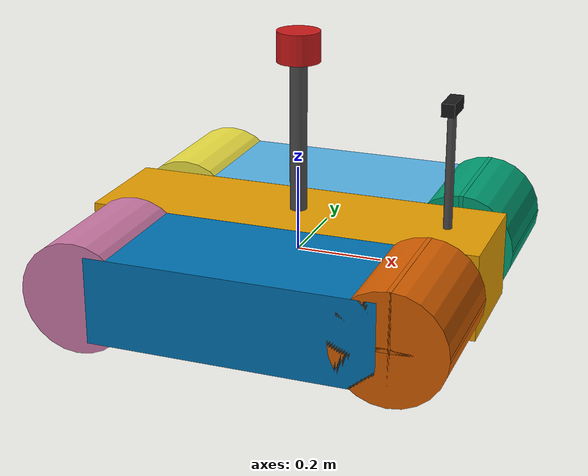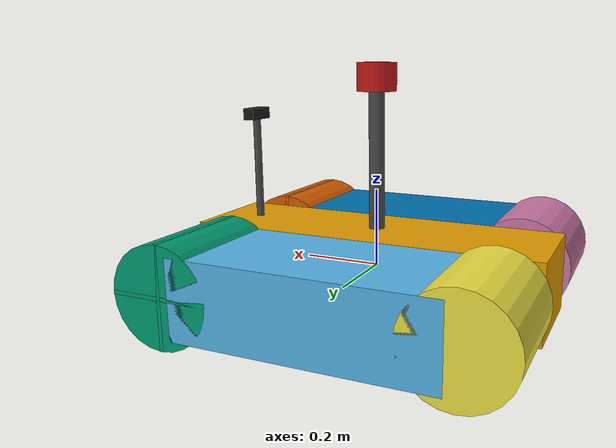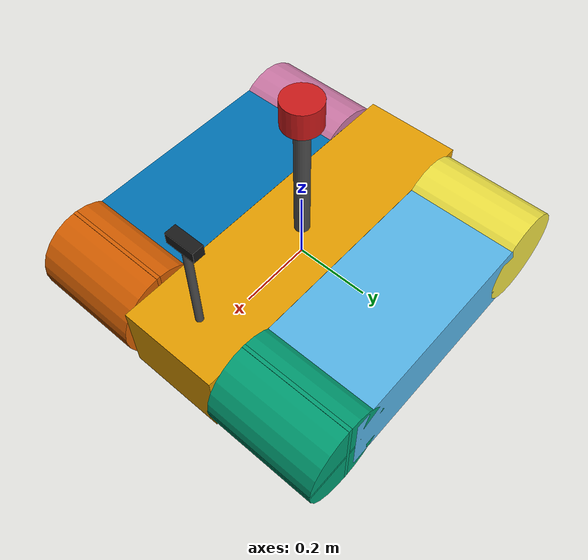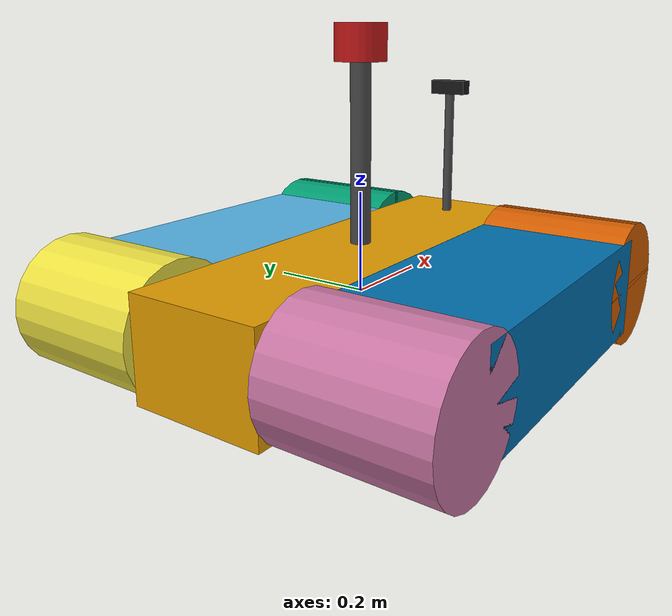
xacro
<robot name="two_track_robot" xmlns:xacro="http://www.ros.org/wiki/xacro">

    <xacro:property name="mass_scale" value="0.958120"/>

    <!-- URDF file for general ROS systems such as ros_control, rviz, etc.           -->
    <!-- We define here;                                                             -->
    <!--     * a body to be wrapped by the track                                     -->
    <!--     * a sprocket to drive the track                                         -->
    <!--     * an axle and actuator for the sprocket                                 -->
    <!--     * an idler wheel on the other side of the sprocket                      -->
    <!-- Other entities specialized for Gazebo are defined in *_gazebo.urdf.xacro .  -->

    <xacro:macro name="make_box_inertia" params="mass size_x size_y size_z">
        <inertial>
            <mass value="${mass}" />
            <inertia ixx="${mass * (size_y * size_y + size_z * size_z) / 12}" ixy="0" ixz="0" iyy="${mass * (size_z * size_z + size_x * size_x) / 12}" iyz="0" izz="${mass * (size_x * size_x + size_y * size_y) / 12}" />
        </inertial>
    </xacro:macro>

    <xacro:macro name="make_wheel_inertia" params="mass radius length">
        <inertial>
            <mass value="${mass}" />
            <!-- assuming axis of cylinder is y, not z -->
            <inertia ixx="${mass * (radius * radius / 4 + length * length / 12)}" ixy="0" ixz="0" iyy="${mass * radius * radius / 2}" iyz="0" izz="${mass * (radius * radius / 4 + length * length / 12)}" />
        </inertial>
    </xacro:macro>

    <!-- ================= MAIN BODY (ROOT LINK) ================= -->

    <link name="body">
        <visual name="lidar_mast">
            <origin xyz="0.0000 0 0.26965" rpy="0 0 0" />
            <geometry><cylinder radius="0.020" length="0.35930" /></geometry>
            <material name="dark_grey"><color rgba="0.3 0.3 0.3 1" /></material>
        </visual>
        <visual name="camera_mast">
            <origin xyz="0.3543 0 0.22885" rpy="0 0 0" />
            <geometry><cylinder radius="0.010" length="0.27770" /></geometry>
            <material name="dark_grey"><color rgba="0.3 0.3 0.3 1" /></material>
        </visual>
        <xacro:make_box_inertia mass="${33.116425*mass_scale}" size_x="0.918" size_y="0.270" size_z="0.20" />

        <visual>
            <geometry>
                <box size="0.918 0.270 0.20" />
            </geometry>
        </visual>

        <collision>
            <geometry>
                <box size="0.918 0.270 0.20" />
            </geometry>
        </collision>
    </link>

    <!-- ================= LEFT TRACK ================= -->

    <!-- body to be wrapped by the track -->

    <link name="left_body">
        <xacro:make_box_inertia mass="${3.0*mass_scale}" size_x="0.65" size_y="0.30" size_z="0.2" />

        <visual>
            <geometry>
                <box size="0.65 0.30 0.2" />
            </geometry>
        </visual>

        <collision>
            <geometry>
                <box size="0.66 0.3 0.2" />
            </geometry>
        </collision>
    </link>

    <joint name="left_body_joint" type="fixed">
        <origin xyz="0 0.28545 0" rpy="0 0 0" />
        <parent link="body" />
        <child link="left_body" />
    </joint>

    <!-- sprocket driving the track -->

    <link name="left_sprocket">
        <xacro:make_wheel_inertia mass="${1.0*mass_scale}" radius="0.128" length="0.30" />

        <visual>
            <origin xyz="0 0 0" rpy="${pi / 2} 0 0" />
            <geometry>
                <cylinder radius="0.128" length="0.30" />
            </geometry>
        </visual>
        <visual>
            <geometry>
                <box size="0.01 0.30 0.256" />
            </geometry>
        </visual>
        <visual>
            <geometry>
                <box size="0.256 0.30 0.01" />
            </geometry>
        </visual>

        <collision>
            <origin xyz="0 0 0" rpy="${pi / 2} 0 0" />
            <geometry>
                <cylinder radius="0.128" length="0.30" />
            </geometry>
        </collision>
    </link>

    <joint name="left_sprocket_axle" type="continuous">
        <origin xyz="0.35 0 0" rpy="0 0 0" />
        <parent link="left_body" />
        <child link="left_sprocket" />
        <axis xyz="0 1 0" />
        <limit effort="55.946" velocity="5.0" />
    </joint>

    <transmission name="left_sprocket_transmission">
        <type>transmission_interface/SimpleTransmission</type>
        <joint name="left_sprocket_axle">
            <hardwareInterface>hardware_interface/VelocityJointInterface</hardwareInterface>
        </joint>
        <actuator name="left_sprocket_actuator">
            <mechanicalReduction>1</mechanicalReduction>
        </actuator>
    </transmission>

    <!-- idler on the other side of the sprocket -->

    <link name="left_idler">
        <xacro:make_wheel_inertia mass="${1.0*mass_scale}" radius="0.128" length="0.30" />

        <visual>
            <origin xyz="0 0 0" rpy="${pi / 2} 0 0" />
            <geometry>
                <cylinder radius="0.128" length="0.30" />
            </geometry>
        </visual>

        <collision>
            <origin xyz="0 0 0" rpy="${pi / 2} 0 0" />
            <geometry>
                <cylinder radius="0.128" length="0.30" />
            </geometry>
        </collision>
    </link>

    <joint name="left_idler_axle" type="fixed">
        <origin xyz="-0.35 0 0" rpy="0 0 0" />
        <parent link="left_body" />
        <child link="left_idler" />
    </joint>

    <!-- ================= RIGHT TRACK ================= -->

    <!-- body to be wrapped by the track -->

    <link name="right_body">
        <xacro:make_box_inertia mass="${3.0*mass_scale}" size_x="0.65" size_y="0.30" size_z="0.2" />

        <visual>
            <geometry>
                <box size="0.65 0.30 0.2" />
            </geometry>
        </visual>

        <collision>
            <geometry>
                <box size="0.66 0.3 0.2" />
            </geometry>
        </collision>
    </link>

    <joint name="right_body_joint" type="fixed">
        <origin xyz="0 -0.28545 0" rpy="0 0 0" />
        <parent link="body" />
        <child link="right_body" />
    </joint>

    <!-- sprocket driving the track -->

    <link name="right_sprocket">
        <xacro:make_wheel_inertia mass="${1.0*mass_scale}" radius="0.128" length="0.30" />

        <visual>
            <origin xyz="0 0 0" rpy="${pi / 2} 0 0" />
            <geometry>
                <cylinder radius="0.128" length="0.30" />
            </geometry>
        </visual>
        <visual>
            <geometry>
                <box size="0.01 0.30 0.256" />
            </geometry>
        </visual>
        <visual>
            <geometry>
                <box size="0.256 0.30 0.01" />
            </geometry>
        </visual>

        <collision>
            <origin xyz="0 0 0" rpy="${pi / 2} 0 0" />
            <geometry>
                <cylinder radius="0.128" length="0.30" />
            </geometry>
        </collision>
    </link>

    <joint name="right_sprocket_axle" type="continuous">
        <origin xyz="0.35 0 0" rpy="0 0 0" />
        <parent link="right_body" />
        <child link="right_sprocket" />
        <axis xyz="0 1 0" />
        <limit effort="55.946" velocity="5.0" />
    </joint>

    <transmission name="right_sprocket_transmission">
        <type>transmission_interface/SimpleTransmission</type>
        <joint name="right_sprocket_axle">
            <hardwareInterface>hardware_interface/VelocityJointInterface</hardwareInterface>
        </joint>
        <actuator name="right_sprocket_actuator">
            <mechanicalReduction>1</mechanicalReduction>
        </actuator>
    </transmission>

    <!-- idler on the other side of the sprocket -->

    <link name="right_idler">
        <xacro:make_wheel_inertia mass="${1.0*mass_scale}" radius="0.128" length="0.30" />

        <visual>
            <origin xyz="0 0 0" rpy="${pi / 2} 0 0" />
            <geometry>
                <cylinder radius="0.128" length="0.30" />
            </geometry>
        </visual>

        <collision>
            <origin xyz="0 0 0" rpy="${pi / 2} 0 0" />
            <geometry>
                <cylinder radius="0.128" length="0.30" />
            </geometry>
        </collision>
    </link>

    <joint name="right_idler_axle" type="fixed">
        <origin xyz="-0.35 0 0" rpy="0 0 0" />
        <parent link="right_body" />
        <child link="right_idler" />
    </joint>

    <!-- ================= VELODYNE LIDAR ================= -->

    <link name="velodyne_base_link">
        <xacro:make_box_inertia mass="${0.824740*mass_scale}" size_x="0.1" size_y="0.1" size_z="0.07" />

        <visual>
            <origin xyz="0 0 0" rpy="0 0 0" />
            <geometry>
                <cylinder radius="0.05" length="0.07"/>
            </geometry>
            <material name="velodyne_red">
                <color rgba="0.8 0.1 0.1 1.0"/>
            </material>
        </visual>

        <collision>
            <origin xyz="0 0 0" rpy="0 0 0" />
            <geometry>
                <cylinder radius="0.05" length="0.07"/>
            </geometry>
        </collision>
    </link>

    <joint name="velodyne_base_mount_joint" type="fixed">
        <origin xyz="0 0 0.4843" rpy="0 0 0" />
        <parent link="body" />
        <child link="velodyne_base_link" />
    </joint>

    <!-- ================= IMU ================= -->

    <link name="imu_link">
        <inertial>
            <mass value="${0.0149050*mass_scale}"/>
            <origin xyz="0 0 0" rpy="0 0 0"/>
            <inertia ixx="6.049218e-06" ixy="0" ixz="0" iyy="1.491588e-06" iyz="0" izz="6.049218e-06"/>
        </inertial>

        <visual>
            <origin xyz="0 0 0" rpy="0 0 0"/>
            <geometry>
                <box size="0.05 0.05 0.02"/>
            </geometry>
            <material name="imu_grey">
                <color rgba="0.3 0.3 0.3 1.0"/>
            </material>
        </visual>

        <collision>
            <origin xyz="0 0 0" rpy="0 0 0"/>
            <geometry>
                <box size="0.05 0.05 0.02"/>
            </geometry>
        </collision>
    </link>

    <joint name="imu_joint" type="fixed">
        <origin xyz="0.015658 0.000000 0.008978" rpy="0 0 0"/>
        <parent link="body"/>
        <child link="imu_link"/>
    </joint>

    <!-- ================= CAMERA ================= -->

    <link name="camera_link">
        <inertial>
            <mass value="${0.0099366*mass_scale}"/>
            <origin xyz="0 0 0" rpy="0 0 0"/>
            <inertia ixx="9.94392e-05" ixy="0" ixz="0" iyy="9.94392e-05" iyz="0" izz="9.94392e-05"/>
        </inertial>

        <visual>
            <origin xyz="0 0 0" rpy="0 0 0"/>
            <geometry>
                <box size="0.03 0.08 0.03"/>
            </geometry>
            <material name="camera_black">
                <color rgba="0.1 0.1 0.1 1.0"/>
            </material>
        </visual>

        <collision>
            <origin xyz="0 0 0" rpy="0 0 0"/>
            <geometry>
                <box size="0.03 0.08 0.03"/>
            </geometry>
        </collision>
    </link>

    <joint name="camera_joint" type="fixed">
        <origin xyz="0.3543 0 0.3827" rpy="0 0 0"/>
        <parent link="body"/>
        <child link="camera_link"/>
    </joint>

    <!-- Optical frame (importante para ROS - convención de cámaras) -->
    <link name="camera_optical_frame">
        <inertial>
            <mass value="${0.0009937*mass_scale}"/>
            <origin xyz="0 0 0" rpy="0 0 0"/>
            <inertia ixx="9.94392e-06" ixy="0" ixz="0" iyy="9.94392e-06" iyz="0" izz="9.94392e-06"/>
        </inertial>
    </link>

    <joint name="camera_optical_joint" type="fixed">
        <!-- Rotación para alinear con convención ROS (Z adelante, X derecha, Y abajo) -->
        <origin xyz="0 0 0" rpy="${-pi/2} 0 ${-pi/2}"/>
        <parent link="camera_link"/>
        <child link="camera_optical_frame"/>
    </joint>

</robot>
